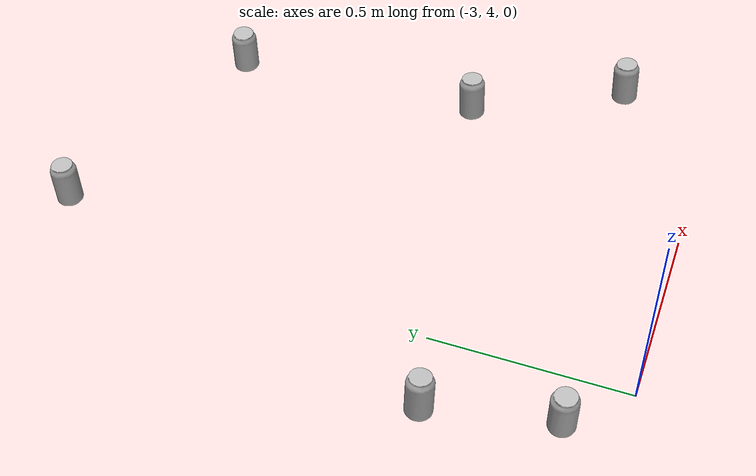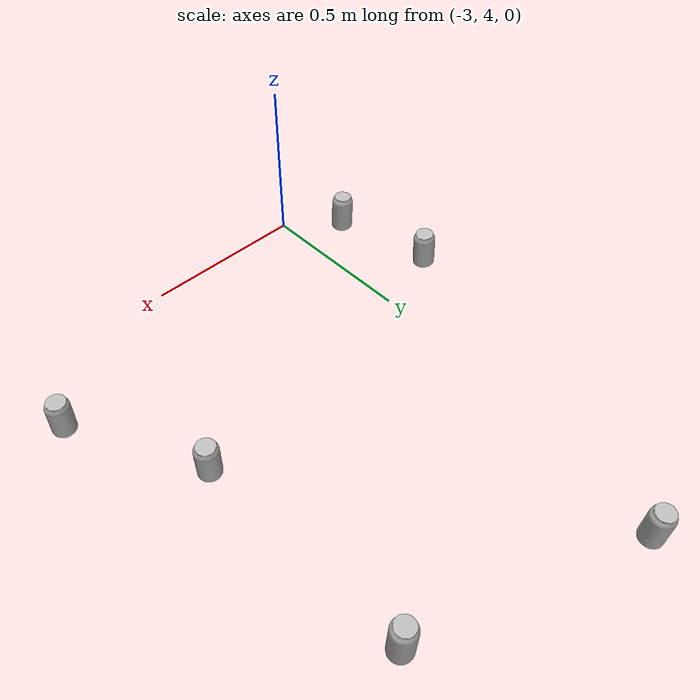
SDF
<sdf version="1.6">
 <world name="default">
  <model name="coke_can97">
   <link name="link">
    <inertial>
     <pose>0 0 0.06 0 -0 0</pose>
     <mass>0.39</mass>
     <inertia>
      <ixx>0.00055575</ixx>
      <ixy>0</ixy>
      <ixz>0</ixz>
      <iyy>0.00055575</iyy>
      <iyz>0</iyz>
      <izz>0.0001755</izz>
     </inertia>
    </inertial>
    <collision name="collision">
     <pose>0.003937 0.004724 -0.18 0 -0 0</pose>
     <geometry><mesh><uri>model://coke_can/meshes/coke_can.dae</uri></mesh></geometry>
     <surface>
      <friction><ode><mu>1</mu><mu2>1</mu2></ode></friction>
      <contact>
       <ode><kp>1e+07</kp><kd>1</kd><min_depth>0.001</min_depth><max_vel>0.1</max_vel></ode>
       <collide_bitmask>256</collide_bitmask>
      </contact>
     </surface>
    </collision>
    <visual name="visual">
     <pose>0.003937 0.004724 -0.18 0 -0 0</pose>
     <geometry><mesh><uri>model://coke_can/meshes/coke_can.dae</uri></mesh></geometry>
    </visual>
   </link>
   <pose>-3.20755 4.45158 -0.002659 -0.055131 0.007729 -1.39359</pose>
  </model>
  <model name="coke_can245">
   <link name="link">
    <inertial>
     <pose>0 0 0.06 0 -0 0</pose>
     <mass>0.39</mass>
     <inertia>
      <ixx>0.00055575</ixx>
      <ixy>0</ixy>
      <ixz>0</ixz>
      <iyy>0.00055575</iyy>
      <iyz>0</iyz>
      <izz>0.0001755</izz>
     </inertia>
    </inertial>
    <collision name="collision">
     <pose>0.003937 0.004724 -0.18 0 -0 0</pose>
     <geometry><mesh><uri>model://coke_can/meshes/coke_can.dae</uri></mesh></geometry>
     <surface>
      <friction><ode><mu>1</mu><mu2>1</mu2></ode></friction>
      <contact>
       <ode><kp>1e+07</kp><kd>1</kd><min_depth>0.001</min_depth><max_vel>0.1</max_vel></ode>
       <collide_bitmask>256</collide_bitmask>
      </contact>
     </surface>
    </collision>
    <visual name="visual">
     <pose>0.003937 0.004724 -0.18 0 -0 0</pose>
     <geometry><mesh><uri>model://coke_can/meshes/coke_can.dae</uri></mesh></geometry>
    </visual>
   </link>
   <pose>-2.0186 4.24901 -0.002659 -0.05513 0.00773 0.135287</pose>
  </model>
  <model name="coke_can468">
   <link name="link">
    <inertial>
     <pose>0 0 0.06 0 -0 0</pose>
     <mass>0.39</mass>
     <inertia>
      <ixx>0.00055575</ixx>
      <ixy>0</ixy>
      <ixz>0</ixz>
      <iyy>0.00055575</iyy>
      <iyz>0</iyz>
      <izz>0.0001755</izz>
     </inertia>
    </inertial>
    <collision name="collision">
     <pose>0.003937 0.004724 -0.18 0 -0 0</pose>
     <geometry><mesh><uri>model://coke_can/meshes/coke_can.dae</uri></mesh></geometry>
     <surface>
      <friction><ode><mu>1</mu><mu2>1</mu2></ode></friction>
      <contact>
       <ode><kp>1e+07</kp><kd>1</kd><min_depth>0.001</min_depth><max_vel>0.1</max_vel></ode>
       <collide_bitmask>256</collide_bitmask>
      </contact>
     </surface>
    </collision>
    <visual name="visual">
     <pose>0.003937 0.004724 -0.18 0 -0 0</pose>
     <geometry><mesh><uri>model://coke_can/meshes/coke_can.dae</uri></mesh></geometry>
    </visual>
   </link>
   <pose>-2.21791 4.62544 -0.002659 -0.055089 0.007758 -0.352913</pose>
  </model>
  <model name="coke_can486">
   <link name="link">
    <inertial>
     <pose>0 0 0.06 0 -0 0</pose>
     <mass>0.39</mass>
     <inertia>
      <ixx>0.00055575</ixx>
      <ixy>0</ixy>
      <ixz>0</ixz>
      <iyy>0.00055575</iyy>
      <iyz>0</iyz>
      <izz>0.0001755</izz>
     </inertia>
    </inertial>
    <collision name="collision">
     <pose>0.003937 0.004724 -0.18 0 -0 0</pose>
     <geometry><mesh><uri>model://coke_can/meshes/coke_can.dae</uri></mesh></geometry>
     <surface>
      <friction><ode><mu>1</mu><mu2>1</mu2></ode></friction>
      <contact>
       <ode><kp>1e+07</kp><kd>1</kd><min_depth>0.001</min_depth><max_vel>0.1</max_vel></ode>
       <collide_bitmask>256</collide_bitmask>
      </contact>
     </surface>
    </collision>
    <visual name="visual">
     <pose>0.003937 0.004724 -0.18 0 -0 0</pose>
     <geometry><mesh><uri>model://coke_can/meshes/coke_can.dae</uri></mesh></geometry>
    </visual>
   </link>
   <pose>-3.1403 4.13974 -0.002659 -0.055131 0.007729 1.92643</pose>
  </model>
  <model name="coke_can663">
   <link name="link">
    <inertial>
     <pose>0 0 0.06 0 -0 0</pose>
     <mass>0.39</mass>
     <inertia>
      <ixx>0.00055575</ixx>
      <ixy>0</ixy>
      <ixz>0</ixz>
      <iyy>0.00055575</iyy>
      <iyz>0</iyz>
      <izz>0.0001755</izz>
     </inertia>
    </inertial>
    <collision name="collision">
     <pose>0.003937 0.004724 -0.18 0 -0 0</pose>
     <geometry><mesh><uri>model://coke_can/meshes/coke_can.dae</uri></mesh></geometry>
     <surface>
      <friction><ode><mu>1</mu><mu2>1</mu2></ode></friction>
      <contact>
       <ode><kp>1e+07</kp><kd>1</kd><min_depth>0.001</min_depth><max_vel>0.1</max_vel></ode>
       <collide_bitmask>256</collide_bitmask>
      </contact>
     </surface>
    </collision>
    <visual name="visual">
     <pose>0.003937 0.004724 -0.18 0 -0 0</pose>
     <geometry><mesh><uri>model://coke_can/meshes/coke_can.dae</uri></mesh></geometry>
    </visual>
   </link>
   <pose>-2.87239 5.50138 -0.002659 -0.055135 0.007725 0.415759</pose>
  </model>
  <model name="coke_can905">
   <link name="link">
    <inertial>
     <pose>0 0 0.06 0 -0 0</pose>
     <mass>0.39</mass>
     <inertia>
      <ixx>0.00055575</ixx>
      <ixy>0</ixy>
      <ixz>0</ixz>
      <iyy>0.00055575</iyy>
      <iyz>0</iyz>
      <izz>0.0001755</izz>
     </inertia>
    </inertial>
    <collision name="collision">
     <pose>0.003937 0.004724 -0.18 0 -0 0</pose>
     <geometry><mesh><uri>model://coke_can/meshes/coke_can.dae</uri></mesh></geometry>
     <surface>
      <friction><ode><mu>1</mu><mu2>1</mu2></ode></friction>
      <contact>
       <ode><kp>1e+07</kp><kd>1</kd><min_depth>0.001</min_depth><max_vel>0.1</max_vel></ode>
       <collide_bitmask>256</collide_bitmask>
      </contact>
     </surface>
    </collision>
    <visual name="visual">
     <pose>0.003937 0.004724 -0.18 0 -0 0</pose>
     <geometry><mesh><uri>model://coke_can/meshes/coke_can.dae</uri></mesh></geometry>
    </visual>
   </link>
   <pose>-2.2395 5.27869 -0.002659 -0.055113 0.007741 1.56014</pose>
  </model>
 </world>
</sdf>
